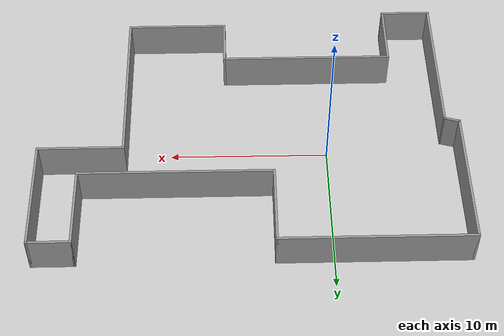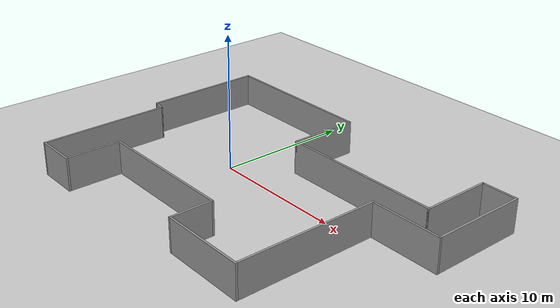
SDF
<sdf version="1.7">
 <world name="default">
  <light name="sun" type="directional">
   <pose>0 0 10 0 -0 0</pose>
   <diffuse>0.8 0.8 0.8 1</diffuse>
   <specular>0.2 0.2 0.2 1</specular>
   <attenuation>
    <range>1000</range>
    <constant>0.9</constant>
    <linear>0.01</linear>
    <quadratic>0.001</quadratic>
   </attenuation>
   <direction>-0.5 0.1 -0.9</direction>
   <spot><inner_angle>0</inner_angle><outer_angle>0</outer_angle><falloff>0</falloff></spot>
  </light>
  <model name="ground_plane">
   <static>1</static>
   <link name="link">
    <collision name="collision">
     <geometry><plane><normal>0 0 1</normal><size>100 100</size></plane></geometry>
     <surface>
      <contact><collide_bitmask>65535</collide_bitmask></contact>
      <friction><ode><mu>100</mu><mu2>50</mu2></ode></friction>
     </surface>
    </collision>
    <visual name="visual">
     <cast_shadows>0</cast_shadows>
     <geometry><plane><normal>0 0 1</normal><size>100 100</size></plane></geometry>
     <material>
      <script><uri>file://media/materials/scripts/gazebo.material</uri><name>Gazebo/Grey</name></script>
     </material>
    </visual>
   </link>
  </model>
  <gravity>0 0 -9.8</gravity>
  <magnetic_field>6e-06 2.3e-05 -4.2e-05</magnetic_field>
  <atmosphere type="adiabatic"/>
  <physics type="ode">
   <max_step_size>0.001</max_step_size>
   <real_time_factor>1</real_time_factor>
   <real_time_update_rate>1000</real_time_update_rate>
  </physics>
  <scene><ambient>0.4 0.4 0.4 1</ambient><background>0.7 0.7 0.7 1</background><shadows>1</shadows></scene>
  <audio><device>default</device></audio>
  <spherical_coordinates>
   <surface_model>EARTH_WGS84</surface_model>
   <latitude_deg>0</latitude_deg>
   <longitude_deg>0</longitude_deg>
   <elevation>0</elevation>
   <heading_deg>0</heading_deg>
  </spherical_coordinates>
  <model name="small_world">
   <pose>4.9282 -1.10449 0 0 -0 0</pose>
   <link name="Wall_1">
    <collision name="Wall_1_Collision">
     <geometry><box><size>9 0.15 2.5</size></box></geometry>
     <pose>0 0 1.25 0 -0 0</pose>
    </collision>
    <visual name="Wall_1_Visual">
     <pose>0 0 1.25 0 -0 0</pose>
     <geometry><box><size>9 0.15 2.5</size></box></geometry>
     <material>
      <script><uri>file://media/materials/scripts/gazebo.material</uri><name>Gazebo/Grey</name></script>
      <ambient>1 1 1 1</ambient>
     </material>
     <meta><layer>0</layer></meta>
    </visual>
    <pose>-13.2663 4.925 0 0 -0 1.5708</pose>
   </link>
   <link name="Wall_10">
    <collision name="Wall_10_Collision">
     <geometry><box><size>6.5 0.15 2.5</size></box></geometry>
     <pose>0 0 1.25 0 -0 0</pose>
    </collision>
    <visual name="Wall_10_Visual">
     <pose>0 0 1.25 0 -0 0</pose>
     <geometry><box><size>6.5 0.15 2.5</size></box></geometry>
     <material>
      <script><uri>file://media/materials/scripts/gazebo.material</uri><name>Gazebo/Grey</name></script>
      <ambient>1 1 1 1</ambient>
     </material>
     <meta><layer>0</layer></meta>
    </visual>
    <pose>4.75867 -8.35 0 0 -0 3.14159</pose>
   </link>
   <link name="Wall_15">
    <collision name="Wall_15_Collision">
     <geometry><box><size>3.25 0.15 2.5</size></box></geometry>
     <pose>0 0 1.25 0 -0 0</pose>
    </collision>
    <visual name="Wall_15_Visual">
     <pose>0 0 1.25 0 -0 0</pose>
     <geometry><box><size>3.25 0.15 2.5</size></box></geometry>
     <material>
      <script><uri>file://media/materials/scripts/gazebo.material</uri><name>Gazebo/Grey</name></script>
      <ambient>1 1 1 1</ambient>
     </material>
     <meta><layer>0</layer></meta>
    </visual>
    <pose>1.58367 -6.8 0 0 -0 1.5708</pose>
   </link>
   <link name="Wall_16">
    <collision name="Wall_16_Collision">
     <geometry><box><size>11 0.15 2.5</size></box></geometry>
     <pose>0 0 1.25 0 -0 0</pose>
    </collision>
    <visual name="Wall_16_Visual">
     <pose>0 0 1.25 0 -0 0</pose>
     <geometry><box><size>11 0.15 2.5</size></box></geometry>
     <material>
      <script><uri>file://media/materials/scripts/gazebo.material</uri><name>Gazebo/Grey</name></script>
      <ambient>1 1 1 1</ambient>
     </material>
     <meta><layer>0</layer></meta>
    </visual>
    <pose>-3.84133 -5.25 0 0 -0 3.14159</pose>
   </link>
   <link name="Wall_17">
    <collision name="Wall_17_Collision">
     <geometry><box><size>4.25 0.15 2.5</size></box></geometry>
     <pose>0 0 1.25 0 -0 0</pose>
    </collision>
    <visual name="Wall_17_Visual">
     <pose>0 0 1.25 0 -0 0</pose>
     <geometry><box><size>4.25 0.15 2.5</size></box></geometry>
     <material>
      <script><uri>file://media/materials/scripts/gazebo.material</uri><name>Gazebo/Grey</name></script>
      <ambient>1 1 1 1</ambient>
     </material>
     <meta><layer>0</layer></meta>
    </visual>
    <pose>-9.26633 -7.3 0 0 -0 -1.5708</pose>
   </link>
   <link name="Wall_18">
    <collision name="Wall_18_Collision">
     <geometry><box><size>3.25 0.15 2.5</size></box></geometry>
     <pose>0 0 1.25 0 -0 0</pose>
    </collision>
    <visual name="Wall_18_Visual">
     <pose>0 0 1.25 0 -0 0</pose>
     <geometry><box><size>3.25 0.15 2.5</size></box></geometry>
     <material>
      <script><uri>file://media/materials/scripts/gazebo.material</uri><name>Gazebo/Grey</name></script>
      <ambient>1 1 1 1</ambient>
     </material>
     <meta><layer>0</layer></meta>
    </visual>
    <pose>-10.8163 -9.35 0 0 -0 3.14159</pose>
   </link>
   <link name="Wall_19">
    <collision name="Wall_19_Collision">
     <geometry><box><size>9.75 0.15 2.5</size></box></geometry>
     <pose>0 0 1.25 0 -0 0</pose>
    </collision>
    <visual name="Wall_19_Visual">
     <pose>0 0 1.25 0 -0 0</pose>
     <geometry><box><size>9.75 0.15 2.5</size></box></geometry>
     <material>
      <script><uri>file://media/materials/scripts/gazebo.material</uri><name>Gazebo/Grey</name></script>
      <ambient>1 1 1 1</ambient>
     </material>
     <meta><layer>0</layer></meta>
    </visual>
    <pose>-12.3663 -4.55 0 0 -0 1.5708</pose>
   </link>
   <link name="Wall_2">
    <collision name="Wall_2_Collision">
     <geometry><box><size>12 0.15 2.5</size></box></geometry>
     <pose>0 0 1.25 0 -0 0</pose>
    </collision>
    <visual name="Wall_2_Visual">
     <pose>0 0 1.25 0 -0 0</pose>
     <geometry><box><size>12 0.15 2.5</size></box></geometry>
     <material>
      <script><uri>file://media/materials/scripts/gazebo.material</uri><name>Gazebo/Grey</name></script>
      <ambient>1 1 1 1</ambient>
     </material>
     <meta><layer>0</layer></meta>
    </visual>
    <pose>-7.34133 9.35 0 0 -0 0</pose>
   </link>
   <link name="Wall_20">
    <collision name="Wall_20_Collision">
     <geometry><box><size>1.08408 0.15 2.5</size></box></geometry>
     <pose>0 0 1.25 0 -0 0</pose>
    </collision>
    <visual name="Wall_20_Visual">
     <pose>0 0 1.25 0 -0 0</pose>
     <geometry><box><size>1.08408 0.15 2.5</size></box></geometry>
     <material>
      <script><uri>file://media/materials/scripts/gazebo.material</uri><name>Gazebo/Grey</name></script>
      <ambient>1 1 1 1</ambient>
     </material>
     <meta><layer>0</layer></meta>
    </visual>
    <pose>-12.8163 0.375 0 0 -0 2.87065</pose>
   </link>
   <link name="Wall_3">
    <collision name="Wall_3_Collision">
     <geometry><box><size>5.25 0.15 2.5</size></box></geometry>
     <pose>0 0 1.25 0 -0 0</pose>
    </collision>
    <visual name="Wall_3_Visual">
     <pose>0 0 1.25 0 -0 0</pose>
     <geometry><box><size>5.25 0.15 2.5</size></box></geometry>
     <material>
      <script><uri>file://media/materials/scripts/gazebo.material</uri><name>Gazebo/Grey</name></script>
      <ambient>1 1 1 1</ambient>
     </material>
     <meta><layer>0</layer></meta>
    </visual>
    <pose>-1.41633 6.8 0 0 -0 -1.5708</pose>
   </link>
   <link name="Wall_4">
    <collision name="Wall_4_Collision">
     <geometry><box><size>12.25 0.15 2.5</size></box></geometry>
     <pose>0 0 1.25 0 -0 0</pose>
    </collision>
    <visual name="Wall_4_Visual">
     <pose>0 0 1.25 0 -0 0</pose>
     <geometry><box><size>12.25 0.15 2.5</size></box></geometry>
     <material>
      <script><uri>file://media/materials/scripts/gazebo.material</uri><name>Gazebo/Grey</name></script>
      <ambient>1 1 1 1</ambient>
     </material>
     <meta><layer>0</layer></meta>
    </visual>
    <pose>4.63367 4.25 0 0 -0 0</pose>
   </link>
   <link name="Wall_5">
    <collision name="Wall_5_Collision">
     <geometry><box><size>5.25 0.15 2.5</size></box></geometry>
     <pose>0 0 1.25 0 -0 0</pose>
    </collision>
    <visual name="Wall_5_Visual">
     <pose>0 0 1.25 0 -0 0</pose>
     <geometry><box><size>5.25 0.15 2.5</size></box></geometry>
     <material>
      <script><uri>file://media/materials/scripts/gazebo.material</uri><name>Gazebo/Grey</name></script>
      <ambient>1 1 1 1</ambient>
     </material>
     <meta><layer>0</layer></meta>
    </visual>
    <pose>10.6837 6.8 0 0 -0 1.5708</pose>
   </link>
   <link name="Wall_6">
    <collision name="Wall_6_Collision">
     <geometry><box><size>2.75 0.15 2.5</size></box></geometry>
     <pose>0 0 1.25 0 -0 0</pose>
    </collision>
    <visual name="Wall_6_Visual">
     <pose>0 0 1.25 0 -0 0</pose>
     <geometry><box><size>2.75 0.15 2.5</size></box></geometry>
     <material>
      <script><uri>file://media/materials/scripts/gazebo.material</uri><name>Gazebo/Grey</name></script>
      <ambient>1 1 1 1</ambient>
     </material>
     <meta><layer>0</layer></meta>
    </visual>
    <pose>11.9837 9.35 0 0 -0 0</pose>
   </link>
   <link name="Wall_7">
    <collision name="Wall_7_Collision">
     <geometry><box><size>7.25 0.15 2.5</size></box></geometry>
     <pose>0 0 1.25 0 -0 0</pose>
    </collision>
    <visual name="Wall_7_Visual">
     <pose>0 0 1.25 0 -0 0</pose>
     <geometry><box><size>7.25 0.15 2.5</size></box></geometry>
     <material>
      <script><uri>file://media/materials/scripts/gazebo.material</uri><name>Gazebo/Grey</name></script>
      <ambient>1 1 1 1</ambient>
     </material>
     <meta><layer>0</layer></meta>
    </visual>
    <pose>13.2837 5.8 0 0 -0 -1.5708</pose>
   </link>
   <link name="Wall_8">
    <collision name="Wall_8_Collision">
     <geometry><box><size>5.5 0.15 2.5</size></box></geometry>
     <pose>0 0 1.25 0 -0 0</pose>
    </collision>
    <visual name="Wall_8_Visual">
     <pose>0 0 1.25 0 -0 0</pose>
     <geometry><box><size>5.5 0.15 2.5</size></box></geometry>
     <material>
      <script><uri>file://media/materials/scripts/gazebo.material</uri><name>Gazebo/Grey</name></script>
      <ambient>1 1 1 1</ambient>
     </material>
     <meta><layer>0</layer></meta>
    </visual>
    <pose>10.6087 2.25 0 0 -0 3.14159</pose>
   </link>
   <link name="Wall_9">
    <collision name="Wall_9_Collision">
     <geometry><box><size>10.75 0.15 2.5</size></box></geometry>
     <pose>0 0 1.25 0 -0 0</pose>
    </collision>
    <visual name="Wall_9_Visual">
     <pose>0 0 1.25 0 -0 0</pose>
     <geometry><box><size>10.75 0.15 2.5</size></box></geometry>
     <material>
      <script><uri>file://media/materials/scripts/gazebo.material</uri><name>Gazebo/Grey</name></script>
      <ambient>1 1 1 1</ambient>
     </material>
     <meta><layer>0</layer></meta>
    </visual>
    <pose>7.93367 -3.05 0 0 -0 -1.5708</pose>
   </link>
   <static>1</static>
  </model>
 </world>
</sdf>
